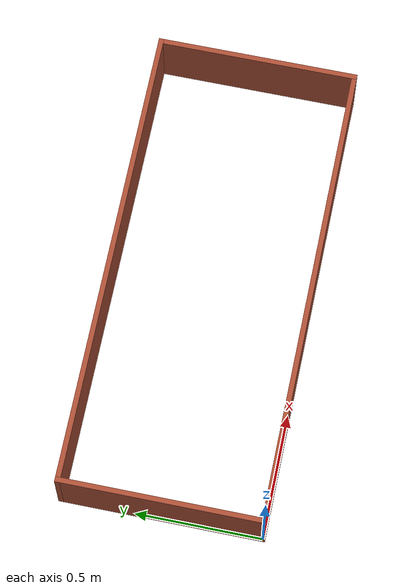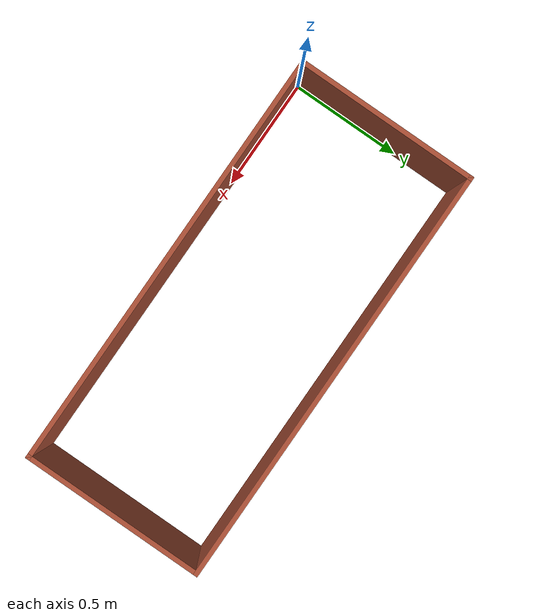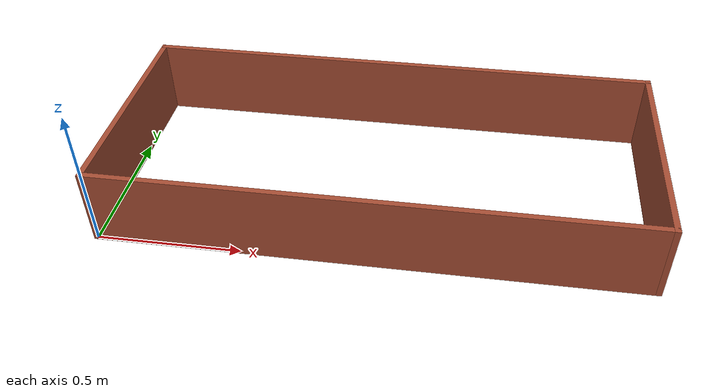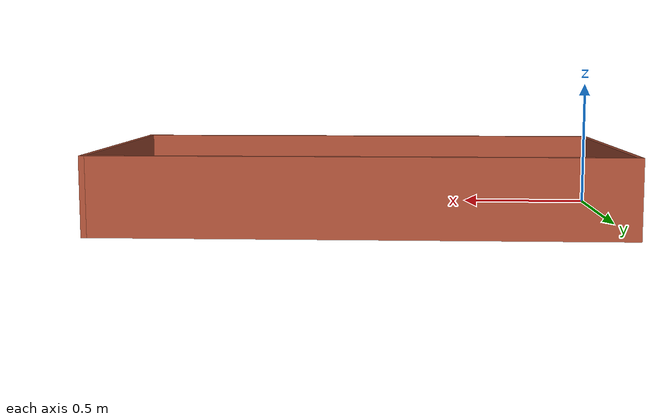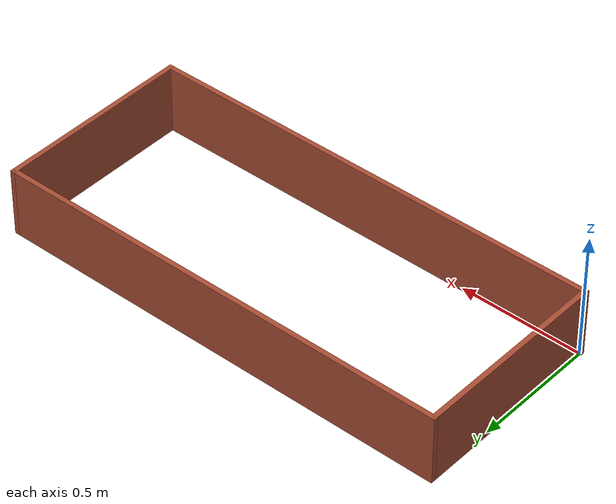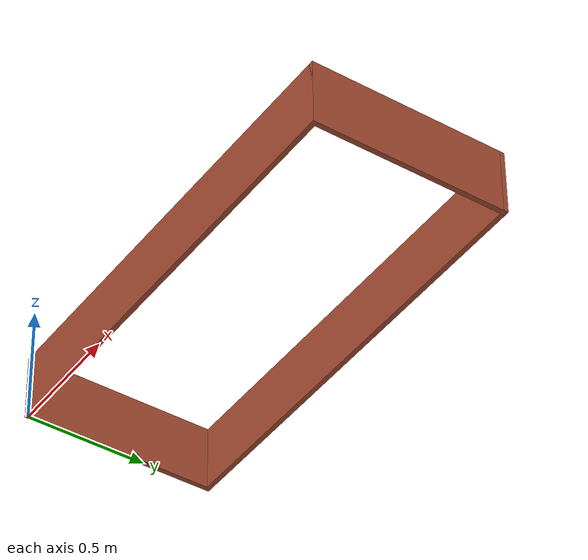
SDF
<?xml version='1.0'?>
<sdf version='1.6'>
  <model name='sandbox'>
    <pose frame=''>0.927 0.3935 0 0 -0 0</pose>
    <link name='Wall_12'>
      <collision name='Wall_12_Collision'>
        <geometry>
          <box>
            <size>1.874 0.02 0.279</size>
          </box>
        </geometry>
        <pose frame=''>0 0 0.1395 0 -0 0</pose>
      </collision>
      <visual name='Wall_12_Visual'>
        <pose frame=''>0 0 0.1395 0 -0 0</pose>
        <geometry>
          <box>
            <size>1.874 0.02 0.279</size>
          </box>
        </geometry>
        <material>
          <script>
            <uri>file://media/materials/scripts/gazebo.material</uri>
            <name>Gazebo/Bricks</name>
          </script>
          <ambient>1 1 1 1</ambient>
        </material>
        <meta>
          <layer>0</layer>
        </meta>
      </visual>
      <pose frame=''>0 -0.3935 0 0 -0 0</pose>
    </link>
    <link name='Wall_14'>
      <collision name='Wall_14_Collision'>
        <geometry>
          <box>
            <size>0.807 0.02 0.279</size>
          </box>
        </geometry>
        <pose frame=''>0 0 0.1395 0 -0 0</pose>
      </collision>
      <visual name='Wall_14_Visual'>
        <pose frame=''>0 0 0.1395 0 -0 0</pose>
        <geometry>
          <box>
            <size>0.807 0.02 0.279</size>
          </box>
        </geometry>
        <material>
          <script>
            <uri>file://media/materials/scripts/gazebo.material</uri>
            <name>Gazebo/Bricks</name>
          </script>
          <ambient>1 1 1 1</ambient>
        </material>
        <meta>
          <layer>0</layer>
        </meta>
      </visual>
      <pose frame=''>0.927 0 0 0 -0 1.5708</pose>
    </link>
    <link name='Wall_15'>
      <collision name='Wall_15_Collision'>
        <geometry>
          <box>
            <size>1.874 0.02 0.279</size>
          </box>
        </geometry>
        <pose frame=''>0 0 0.1395 0 -0 0</pose>
      </collision>
      <visual name='Wall_15_Visual'>
        <pose frame=''>0 0 0.1395 0 -0 0</pose>
        <geometry>
          <box>
            <size>1.874 0.02 0.279</size>
          </box>
        </geometry>
        <material>
          <script>
            <uri>file://media/materials/scripts/gazebo.material</uri>
            <name>Gazebo/Bricks</name>
          </script>
          <ambient>1 1 1 1</ambient>
        </material>
        <meta>
          <layer>0</layer>
        </meta>
      </visual>
      <pose frame=''>0 0.3935 0 0 -0 3.14159</pose>
    </link>
    <link name='Wall_16'>
      <collision name='Wall_16_Collision'>
        <geometry>
          <box>
            <size>0.807 0.02 0.279</size>
          </box>
        </geometry>
        <pose frame=''>0 0 0.1395 0 -0 0</pose>
      </collision>
      <visual name='Wall_16_Visual'>
        <pose frame=''>0 0 0.1395 0 -0 0</pose>
        <geometry>
          <box>
            <size>0.807 0.02 0.279</size>
          </box>
        </geometry>
        <material>
          <script>
            <uri>file://media/materials/scripts/gazebo.material</uri>
            <name>Gazebo/Bricks</name>
          </script>
          <ambient>1 1 1 1</ambient>
        </material>
        <meta>
          <layer>0</layer>
        </meta>
      </visual>
      <pose frame=''>-0.927 0 0 0 -0 -1.5708</pose>
    </link>
    <static>1</static>
  </model>
</sdf>
